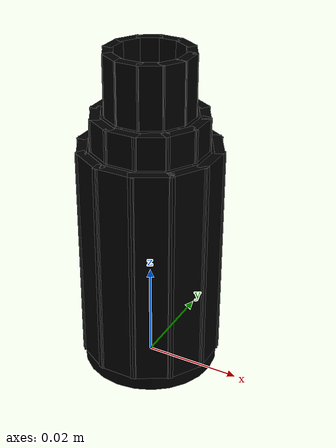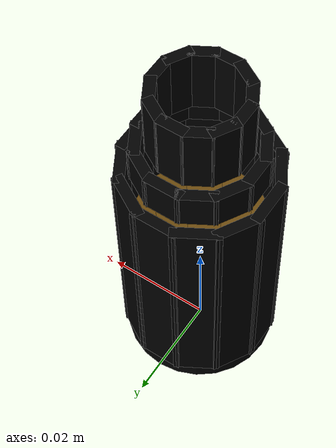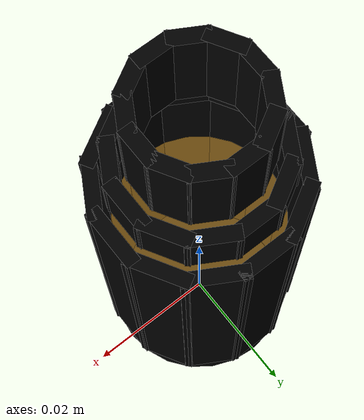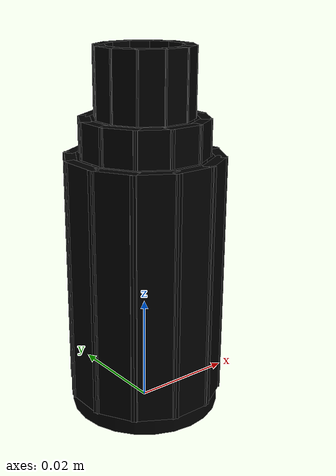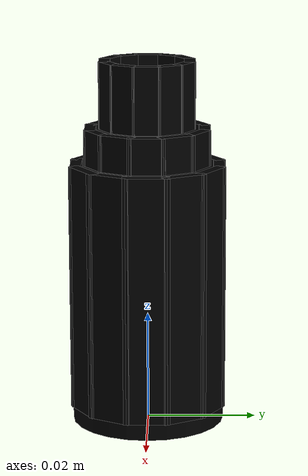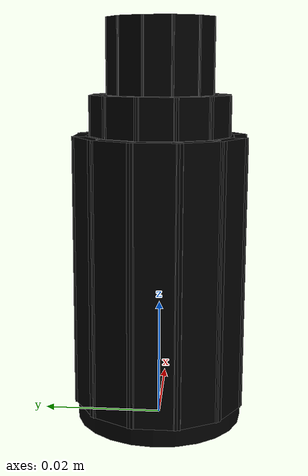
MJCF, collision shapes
<!-- Generated by tools/build_labelled_bottles.py. Eugenol (liquid),
     20 ml, marker 21, barcode 2009703312524.
     Origin bottom-centre, +Z up, the label's front facing -Y. -->
<mujoco model="SMP-0022_open">
  <!-- Generated by scripts/generate_open_vessels.py; do not edit by hand. -->
  <asset>
    <mesh name="flask_20ml_glass" file="../labelled_bottles/meshes/flask_20ml_glass.obj" inertia="exact"/>
    <mesh name="flask_20ml_cap" file="../labelled_bottles/meshes/flask_20ml_cap.obj" inertia="exact"/>
    <mesh name="flask_20ml_label" file="../labelled_bottles/meshes/flask_20ml_label.obj" inertia="shell"/>
    <mesh name="flask_20ml_label_back" file="../labelled_bottles/meshes/flask_20ml_label_back.obj" inertia="shell"/>
    <texture name="label" type="2d" file="../labelled_bottles/textures/SMP-0022.png"/>
    <material name="label" texture="label" specular="0.05" shininess="0.1"/>
  </asset>
  <worldbody>
    <body name="SMP-0022">
      <inertial pos="-0.00001 -0.00000 0.03071" mass="0.02506"
                diaginertia="1.175e-05 1.175e-05 3.413e-06"/>
      <geom name="glass" type="mesh" mesh="flask_20ml_glass" rgba="0.620 0.280 0.050 0.500" contype="0" conaffinity="0" mass="0"/>
      <geom name="label" type="mesh" mesh="flask_20ml_label" material="label" contype="0" conaffinity="0" mass="0"/>
      <geom name="label_back" type="mesh" mesh="flask_20ml_label_back" rgba="0.950 0.950 0.930 1" contype="0" conaffinity="0" mass="0"/>
      <geom name="body_00" type="box" pos="0.01307 0.00000 0.02579"
            size="0.00100 0.00428 0.02279" euler="0 0 0.000"
            rgba="0 0 0 0" mass="0" group="3"/>
      <geom name="body_01" type="box" pos="0.01131 0.00653 0.02579"
            size="0.00100 0.00428 0.02279" euler="0 0 30.000"
            rgba="0 0 0 0" mass="0" group="3"/>
      <geom name="body_02" type="box" pos="0.00653 0.01131 0.02579"
            size="0.00100 0.00428 0.02279" euler="0 0 60.000"
            rgba="0 0 0 0" mass="0" group="3"/>
      <geom name="body_03" type="box" pos="0.00000 0.01307 0.02579"
            size="0.00100 0.00428 0.02279" euler="0 0 90.000"
            rgba="0 0 0 0" mass="0" group="3"/>
      <geom name="body_04" type="box" pos="-0.00653 0.01131 0.02579"
            size="0.00100 0.00428 0.02279" euler="0 0 120.000"
            rgba="0 0 0 0" mass="0" group="3"/>
      <geom name="body_05" type="box" pos="-0.01131 0.00653 0.02579"
            size="0.00100 0.00428 0.02279" euler="0 0 150.000"
            rgba="0 0 0 0" mass="0" group="3"/>
      <geom name="body_06" type="box" pos="-0.01307 0.00000 0.02579"
            size="0.00100 0.00428 0.02279" euler="0 0 180.000"
            rgba="0 0 0 0" mass="0" group="3"/>
      <geom name="body_07" type="box" pos="-0.01131 -0.00653 0.02579"
            size="0.00100 0.00428 0.02279" euler="0 0 210.000"
            rgba="0 0 0 0" mass="0" group="3"/>
      <geom name="body_08" type="box" pos="-0.00653 -0.01131 0.02579"
            size="0.00100 0.00428 0.02279" euler="0 0 240.000"
            rgba="0 0 0 0" mass="0" group="3"/>
      <geom name="body_09" type="box" pos="-0.00000 -0.01307 0.02579"
            size="0.00100 0.00428 0.02279" euler="0 0 270.000"
            rgba="0 0 0 0" mass="0" group="3"/>
      <geom name="body_10" type="box" pos="0.00653 -0.01131 0.02579"
            size="0.00100 0.00428 0.02279" euler="0 0 300.000"
            rgba="0 0 0 0" mass="0" group="3"/>
      <geom name="body_11" type="box" pos="0.01131 -0.00653 0.02579"
            size="0.00100 0.00428 0.02279" euler="0 0 330.000"
            rgba="0 0 0 0" mass="0" group="3"/>
      <geom name="shoulder_00" type="box" pos="0.01038 0.00000 0.05188"
            size="0.00100 0.00340 0.00331" euler="0 0 0.000"
            rgba="0 0 0 0" mass="0" group="3"/>
      <geom name="shoulder_01" type="box" pos="0.00899 0.00519 0.05188"
            size="0.00100 0.00340 0.00331" euler="0 0 30.000"
            rgba="0 0 0 0" mass="0" group="3"/>
      <geom name="shoulder_02" type="box" pos="0.00519 0.00899 0.05188"
            size="0.00100 0.00340 0.00331" euler="0 0 60.000"
            rgba="0 0 0 0" mass="0" group="3"/>
      <geom name="shoulder_03" type="box" pos="0.00000 0.01038 0.05188"
            size="0.00100 0.00340 0.00331" euler="0 0 90.000"
            rgba="0 0 0 0" mass="0" group="3"/>
      <geom name="shoulder_04" type="box" pos="-0.00519 0.00899 0.05188"
            size="0.00100 0.00340 0.00331" euler="0 0 120.000"
            rgba="0 0 0 0" mass="0" group="3"/>
      <geom name="shoulder_05" type="box" pos="-0.00899 0.00519 0.05188"
            size="0.00100 0.00340 0.00331" euler="0 0 150.000"
            rgba="0 0 0 0" mass="0" group="3"/>
      <geom name="shoulder_06" type="box" pos="-0.01038 0.00000 0.05188"
            size="0.00100 0.00340 0.00331" euler="0 0 180.000"
            rgba="0 0 0 0" mass="0" group="3"/>
      <geom name="shoulder_07" type="box" pos="-0.00899 -0.00519 0.05188"
            size="0.00100 0.00340 0.00331" euler="0 0 210.000"
            rgba="0 0 0 0" mass="0" group="3"/>
      <geom name="shoulder_08" type="box" pos="-0.00519 -0.00899 0.05188"
            size="0.00100 0.00340 0.00331" euler="0 0 240.000"
            rgba="0 0 0 0" mass="0" group="3"/>
      <geom name="shoulder_09" type="box" pos="-0.00000 -0.01038 0.05188"
            size="0.00100 0.00340 0.00331" euler="0 0 270.000"
            rgba="0 0 0 0" mass="0" group="3"/>
      <geom name="shoulder_10" type="box" pos="0.00519 -0.00899 0.05188"
            size="0.00100 0.00340 0.00331" euler="0 0 300.000"
            rgba="0 0 0 0" mass="0" group="3"/>
      <geom name="shoulder_11" type="box" pos="0.00899 -0.00519 0.05188"
            size="0.00100 0.00340 0.00331" euler="0 0 330.000"
            rgba="0 0 0 0" mass="0" group="3"/>
      <geom name="neck_00" type="box" pos="0.00770 0.00000 0.06133"
            size="0.00100 0.00252 0.00614" euler="0 0 0.000"
            rgba="0 0 0 0" mass="0" group="3"/>
      <geom name="neck_01" type="box" pos="0.00667 0.00385 0.06133"
            size="0.00100 0.00252 0.00614" euler="0 0 30.000"
            rgba="0 0 0 0" mass="0" group="3"/>
      <geom name="neck_02" type="box" pos="0.00385 0.00667 0.06133"
            size="0.00100 0.00252 0.00614" euler="0 0 60.000"
            rgba="0 0 0 0" mass="0" group="3"/>
      <geom name="neck_03" type="box" pos="0.00000 0.00770 0.06133"
            size="0.00100 0.00252 0.00614" euler="0 0 90.000"
            rgba="0 0 0 0" mass="0" group="3"/>
      <geom name="neck_04" type="box" pos="-0.00385 0.00667 0.06133"
            size="0.00100 0.00252 0.00614" euler="0 0 120.000"
            rgba="0 0 0 0" mass="0" group="3"/>
      <geom name="neck_05" type="box" pos="-0.00667 0.00385 0.06133"
            size="0.00100 0.00252 0.00614" euler="0 0 150.000"
            rgba="0 0 0 0" mass="0" group="3"/>
      <geom name="neck_06" type="box" pos="-0.00770 0.00000 0.06133"
            size="0.00100 0.00252 0.00614" euler="0 0 180.000"
            rgba="0 0 0 0" mass="0" group="3"/>
      <geom name="neck_07" type="box" pos="-0.00667 -0.00385 0.06133"
            size="0.00100 0.00252 0.00614" euler="0 0 210.000"
            rgba="0 0 0 0" mass="0" group="3"/>
      <geom name="neck_08" type="box" pos="-0.00385 -0.00667 0.06133"
            size="0.00100 0.00252 0.00614" euler="0 0 240.000"
            rgba="0 0 0 0" mass="0" group="3"/>
      <geom name="neck_09" type="box" pos="-0.00000 -0.00770 0.06133"
            size="0.00100 0.00252 0.00614" euler="0 0 270.000"
            rgba="0 0 0 0" mass="0" group="3"/>
      <geom name="neck_10" type="box" pos="0.00385 -0.00667 0.06133"
            size="0.00100 0.00252 0.00614" euler="0 0 300.000"
            rgba="0 0 0 0" mass="0" group="3"/>
      <geom name="neck_11" type="box" pos="0.00667 -0.00385 0.06133"
            size="0.00100 0.00252 0.00614" euler="0 0 330.000"
            rgba="0 0 0 0" mass="0" group="3"/>
      <geom name="base" type="cylinder" pos="0 0 0.00150"
            size="0.01406 0.00150"
            rgba="0 0 0 0" mass="0" group="3"/>
      <geom name="liquid" type="cylinder" pos="0 0 0.01788"
            size="0.01206 0.01488" rgba="0.86 0.62 0.18 0.55"
            contype="0" conaffinity="0" mass="0"/>
      <site name="mouth" pos="0 0 0.06747" size="0.00598 0.001" type="cylinder"
            rgba="0.2 0.7 0.9 0.25" group="4"/>
    </body>
  </worldbody>
</mujoco>
